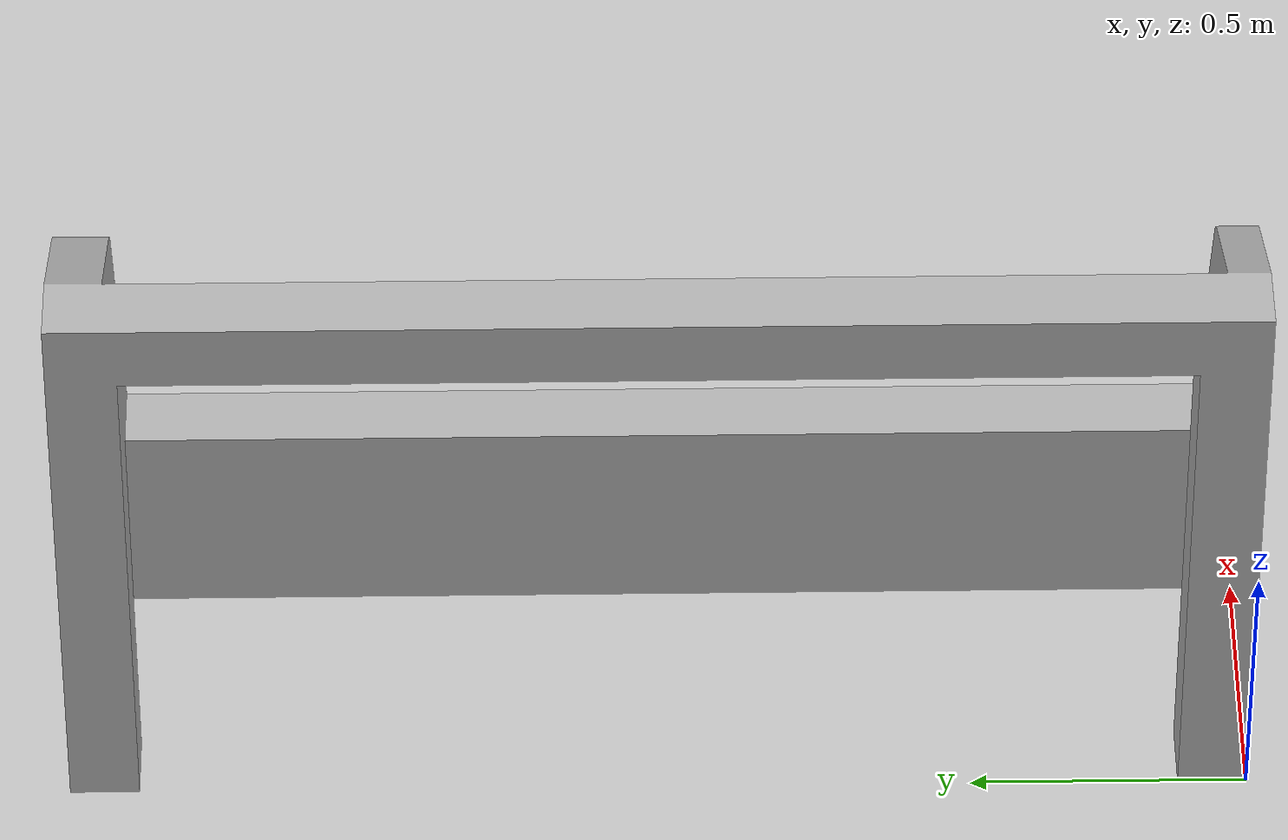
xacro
<?xml version="1.0" ?>
<robot name="Goal" xmlns:xacro="http://www.ros.org/wiki/xacro">

<xacro:include filename="$(find gazebo_iris)/models/goal/urdf/materials.xacro" />
<xacro:include filename="$(find gazebo_iris)/models/goal/urdf/Goal.trans" />
<xacro:include filename="$(find gazebo_iris)/models/goal/urdf/Goal.gazebo" />
<link name="base_link">
  <inertial>
    <origin xyz="0.3678765915508032 1.0905544346862515 0.42356438593375323" rpy="0 0 0"/>
    <mass value="1680.367038975689"/>
    <inertia ixx="1225.859289" iyy="302.36295" izz="1094.719543" ixy="1.077607" iyz="-0.090978" ixz="92.048406"/>
  </inertial>
  <visual>
    <origin xyz="0 0 0" rpy="0 0 0"/>
    <geometry>
      <mesh filename="package://gazebo_iris/models/goal/meshes/base_link.stl" scale="0.001 0.001 0.001"/>
    </geometry>
    <material name="silver"/>
  </visual>
  <collision>
    <origin xyz="0 0 0" rpy="0 0 0"/>
    <geometry>
      <mesh filename="package://gazebo_iris/models/goal/meshes/base_link.stl" scale="0.001 0.001 0.001"/>
    </geometry>
  </collision>
</link>

</robot>

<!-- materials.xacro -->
<robot name="Goal" xmlns:xacro="http://www.ros.org/wiki/xacro" >

<material name="silver">
  <color rgba="0.700 0.700 0.700 1.000"/>
</material>

</robot>

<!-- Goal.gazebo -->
<robot name="Goal" xmlns:xacro="http://www.ros.org/wiki/xacro" >

<xacro:property name="body_color" value="Gazebo/Silver" />

<gazebo>
  <plugin name="control" filename="libgazebo_ros_control.so"/>
</gazebo>
<gazebo reference="base_link">
  <material>${body_color}</material>
  <mu1>0.2</mu1>
  <mu2>0.2</mu2>
  <selfCollide>true</selfCollide>
  <gravity>true</gravity>
</gazebo>

</robot>
